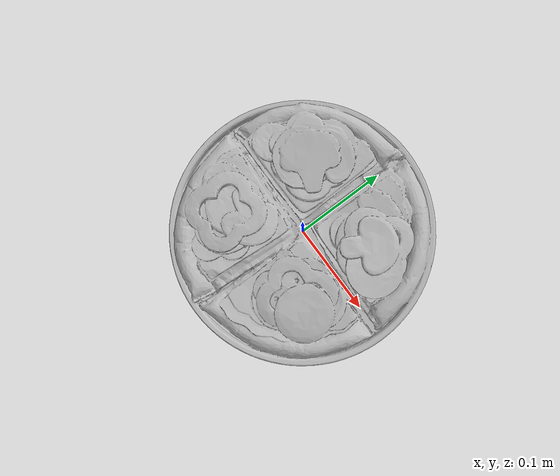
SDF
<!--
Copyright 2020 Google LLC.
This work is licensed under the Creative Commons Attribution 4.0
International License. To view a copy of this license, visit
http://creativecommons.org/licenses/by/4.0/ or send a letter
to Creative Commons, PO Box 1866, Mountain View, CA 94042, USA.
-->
<?xml version="1.0" ?>
<sdf version="1.6">
  <model name="fdfsdfsdfdsf">
    <link name="link_0">
      <visual name="visual">
        <geometry>
          <mesh>
            <uri>model://pizza/meshes/model.obj</uri>
          </mesh>
        </geometry>
      </visual>
      <collision name="collision_0">
        <geometry>
          <mesh>
            <uri>model://pizza/meshes/model.obj</uri>
          </mesh>
        </geometry>
      </collision>
    </link>
  </model>
</sdf>
